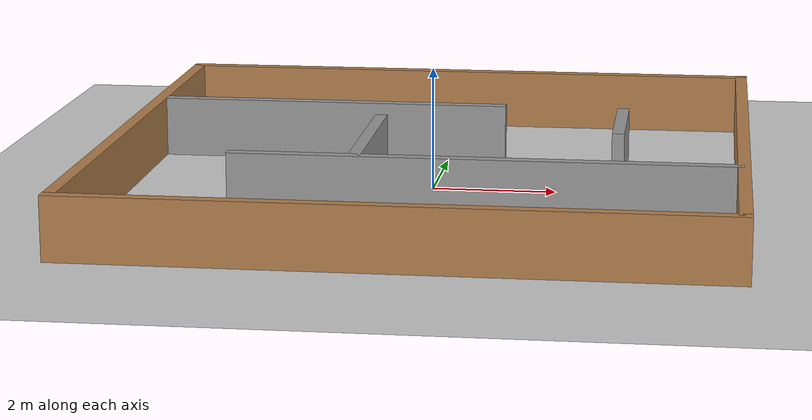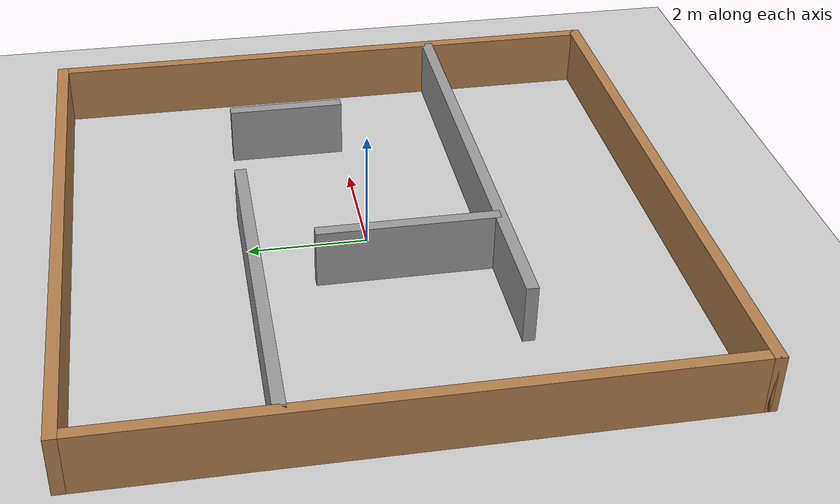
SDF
<?xml version="1.0" ?>
<sdf version="1.6">
  <world name="default">
    <include>
      <uri>model://sun</uri>
    </include>
    <include>
      <uri>model://ground_plane</uri>
    </include>

    <model name="simple_maze">
      <static>true</static>

      <link name="wall_top">
        <pose>0 5 0.5 0 0 0</pose>
        <collision name="collision"><geometry><box><size>10.2 0.2 1</size></box></geometry></collision>
        <visual name="visual"><geometry><box><size>10.2 0.2 1</size></box></geometry><material><script><uri>file://media/materials/scripts/gazebo.material</uri><name>Gazebo/Wood</name></script></material></visual>
      </link>
      <link name="wall_bottom">
        <pose>0 -5 0.5 0 0 0</pose>
        <collision name="collision"><geometry><box><size>10.2 0.2 1</size></box></geometry></collision>
        <visual name="visual"><geometry><box><size>10.2 0.2 1</size></box></geometry><material><script><uri>file://media/materials/scripts/gazebo.material</uri><name>Gazebo/Wood</name></script></material></visual>
      </link>
      <link name="wall_left">
        <pose>-5 0 0.5 0 0 0</pose>
        <collision name="collision"><geometry><box><size>0.2 10 1</size></box></geometry></collision>
        <visual name="visual"><geometry><box><size>0.2 10 1</size></box></geometry><material><script><uri>file://media/materials/scripts/gazebo.material</uri><name>Gazebo/Wood</name></script></material></visual>
      </link>
      <link name="wall_right">
        <pose>5 0 0.5 0 0 0</pose>
        <collision name="collision"><geometry><box><size>0.2 10 1</size></box></geometry></collision>
        <visual name="visual"><geometry><box><size>0.2 10 1</size></box></geometry><material><script><uri>file://media/materials/scripts/gazebo.material</uri><name>Gazebo/Wood</name></script></material></visual>
      </link>

      <link name="wall_inner_1">
        <pose>-2 2 0.5 0 0 0</pose>
        <collision name="collision"><geometry><box><size>6 0.2 1</size></box></geometry></collision>
        <visual name="visual"><geometry><box><size>6 0.2 1</size></box></geometry><material><script><uri>file://media/materials/scripts/gazebo.material</uri><name>Gazebo/Grey</name></script></material></visual>
      </link>
      <link name="wall_inner_2">
        <pose>1 -2 0.5 0 0 0</pose>
        <collision name="collision"><geometry><box><size>8 0.2 1</size></box></geometry></collision>
        <visual name="visual"><geometry><box><size>8 0.2 1</size></box></geometry><material><script><uri>file://media/materials/scripts/gazebo.material</uri><name>Gazebo/Grey</name></script></material></visual>
      </link>
      <link name="wall_inner_3">
        <pose>-1 -0.5 0.5 0 0 1.5708</pose> <collision name="collision"><geometry><box><size>3 0.2 1</size></box></geometry></collision>
        <visual name="visual"><geometry><box><size>3 0.2 1</size></box></geometry><material><script><uri>file://media/materials/scripts/gazebo.material</uri><name>Gazebo/Grey</name></script></material></visual>
      </link>
      <link name="wall_inner_4">
        <pose>3 1 0.5 0 0 1.5708</pose> <collision name="collision"><geometry><box><size>2 0.2 1</size></box></geometry></collision>
        <visual name="visual"><geometry><box><size>2 0.2 1</size></box></geometry><material><script><uri>file://media/materials/scripts/gazebo.material</uri><name>Gazebo/Grey</name></script></material></visual>
      </link>

    </model>
  </world>
</sdf>
